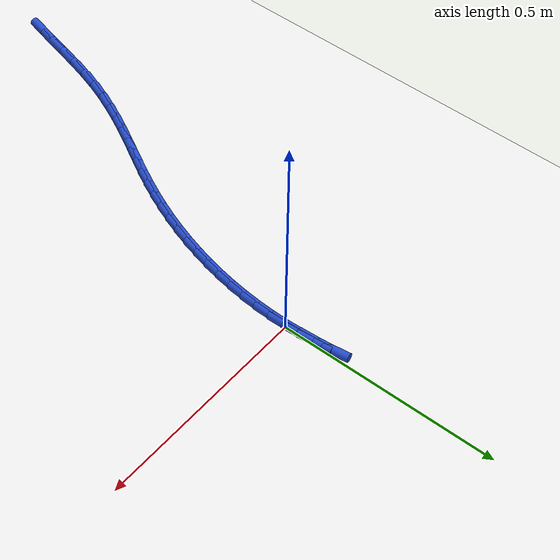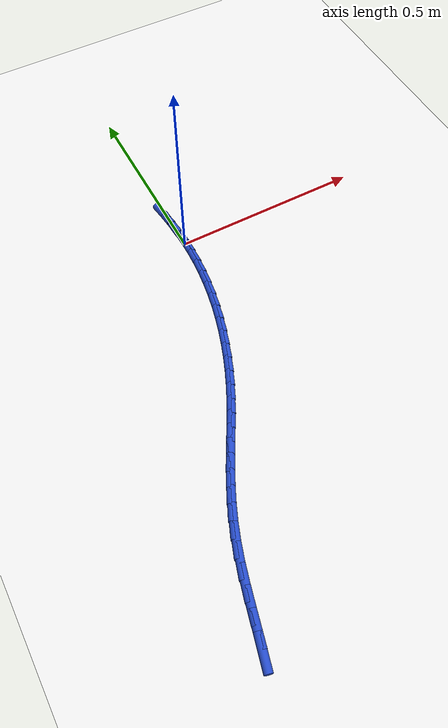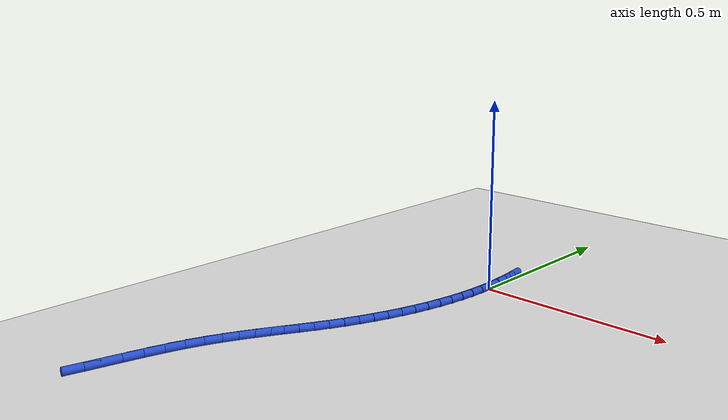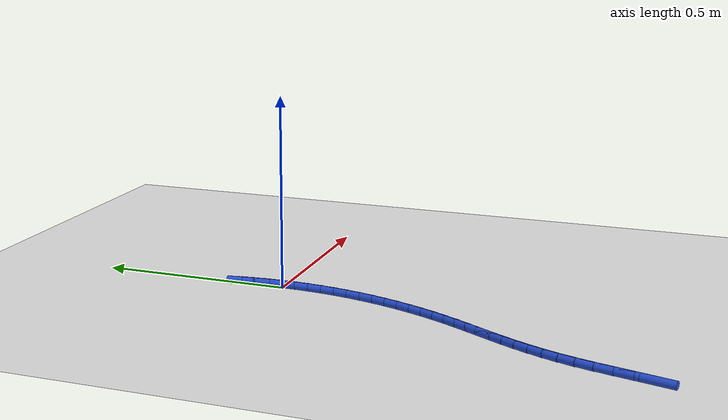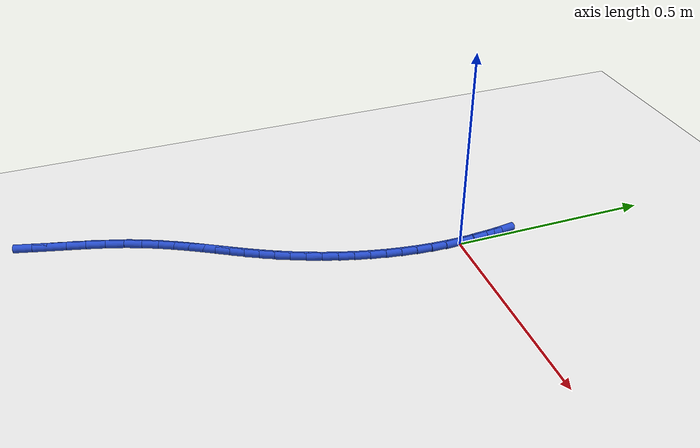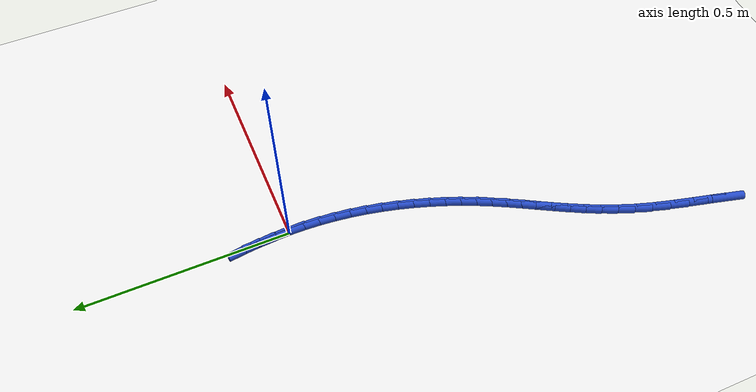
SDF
<sdf version="1.6">
 <world name="default">
  <model name="ground_plane">
   <static>1</static>
   <link name="link">
    <collision name="collision">
     <geometry><plane><normal>0 0 1</normal><size>100 100</size></plane></geometry>
     <surface><friction><ode><mu>100</mu><mu2>50</mu2></ode></friction></surface>
    </collision>
    <visual name="visual">
     <cast_shadows>0</cast_shadows>
     <geometry><plane><normal>0 0 1</normal><size>100 100</size></plane></geometry>
     <material>
      <script><uri>file://media/materials/scripts/gazebo.material</uri><name>Gazebo/WhiteGlow</name></script>
     </material>
    </visual>
   </link>
  </model>
  <model name="line">
   <link name="link_0">
    <pose>1.9949319973733282e-17 2.7755575615628914e-17 0.01 0 1.57 -1.537967544123048</pose>
    <collision name="collision">
     <geometry><cylinder><radius>0.01</radius><length>0.08</length></cylinder></geometry>
    </collision>
    <visual name="visual">
     <material>
      <script><name>Gazebo/Blue</name><uri>file://media/materials/scripts/gazebo.material</uri></script>
     </material>
     <geometry><cylinder><radius>0.01</radius><length>0.08</length></cylinder></geometry>
    </visual>
   </link>
   <link name="link_1">
    <pose>-0.0012037588185470295 0.03665461365363052 0.01 0 1.57 -1.499386344822641</pose>
    <collision name="collision">
     <geometry><cylinder><radius>0.01</radius><length>0.08</length></cylinder></geometry>
    </collision>
    <visual name="visual">
     <material>
      <script><name>Gazebo/Blue</name><uri>file://media/materials/scripts/gazebo.material</uri></script>
     </material>
     <geometry><cylinder><radius>0.01</radius><length>0.08</length></cylinder></geometry>
    </visual>
   </link>
   <link name="link_2">
    <pose>-0.0038199700766872713 0.07322881028822745 0.01 0 1.57 -1.4655532369670923</pose>
    <collision name="collision">
     <geometry><cylinder><radius>0.01</radius><length>0.08</length></cylinder></geometry>
    </collision>
    <visual name="visual">
     <material>
      <script><name>Gazebo/Blue</name><uri>file://media/materials/scripts/gazebo.material</uri></script>
     </material>
     <geometry><cylinder><radius>0.01</radius><length>0.08</length></cylinder></geometry>
    </visual>
   </link>
   <link name="link_3">
    <pose>-0.007688108798061293 0.10984733663296763 0.01 0 1.57 -1.4367887436755327</pose>
    <collision name="collision">
     <geometry><cylinder><radius>0.01</radius><length>0.08</length></cylinder></geometry>
    </collision>
    <visual name="visual">
     <material>
      <script><name>Gazebo/Blue</name><uri>file://media/materials/scripts/gazebo.material</uri></script>
     </material>
     <geometry><cylinder><radius>0.01</radius><length>0.08</length></cylinder></geometry>
    </visual>
   </link>
   <link name="link_243">
    <pose>-0.32262452233559424 -0.9791193335275507 0.01 0 1.57 1.3175782631200623</pose>
    <collision name="collision">
     <geometry><cylinder><radius>0.01</radius><length>0.08</length></cylinder></geometry>
    </collision>
    <visual name="visual">
     <material>
      <script><name>Gazebo/Blue</name><uri>file://media/materials/scripts/gazebo.material</uri></script>
     </material>
     <geometry><cylinder><radius>0.01</radius><length>0.08</length></cylinder></geometry>
    </visual>
   </link>
   <link name="link_244">
    <pose>-0.3113951539880688 -0.9357246040898904 0.01 0 1.57 1.3250016794053823</pose>
    <collision name="collision">
     <geometry><cylinder><radius>0.01</radius><length>0.08</length></cylinder></geometry>
    </collision>
    <visual name="visual">
     <material>
      <script><name>Gazebo/Blue</name><uri>file://media/materials/scripts/gazebo.material</uri></script>
     </material>
     <geometry><cylinder><radius>0.01</radius><length>0.08</length></cylinder></geometry>
    </visual>
   </link>
   <link name="link_245">
    <pose>-0.30021555740046973 -0.8911607936207857 0.01 0 1.57 1.3177851593825725</pose>
    <collision name="collision">
     <geometry><cylinder><radius>0.01</radius><length>0.08</length></cylinder></geometry>
    </collision>
    <visual name="visual">
     <material>
      <script><name>Gazebo/Blue</name><uri>file://media/materials/scripts/gazebo.material</uri></script>
     </material>
     <geometry><cylinder><radius>0.01</radius><length>0.08</length></cylinder></geometry>
    </visual>
   </link>
   <link name="link_246">
    <pose>-0.2886948882665122 -0.846602353147321 0.01 0 1.57 1.2955108911538684</pose>
    <collision name="collision">
     <geometry><cylinder><radius>0.01</radius><length>0.08</length></cylinder></geometry>
    </collision>
    <visual name="visual">
     <material>
      <script><name>Gazebo/Blue</name><uri>file://media/materials/scripts/gazebo.material</uri></script>
     </material>
     <geometry><cylinder><radius>0.01</radius><length>0.08</length></cylinder></geometry>
    </visual>
   </link>
   <link name="link_247">
    <pose>-0.276442302279911 -0.8032237336965817 0.01 0 1.57 1.2562616386047862</pose>
    <collision name="collision">
     <geometry><cylinder><radius>0.01</radius><length>0.08</length></cylinder></geometry>
    </collision>
    <visual name="visual">
     <material>
      <script><name>Gazebo/Blue</name><uri>file://media/materials/scripts/gazebo.material</uri></script>
     </material>
     <geometry><cylinder><radius>0.01</radius><length>0.08</length></cylinder></geometry>
    </visual>
   </link>
   <link name="link_248">
    <pose>-0.2630824331982659 -0.76215874799347 0.01 0 1.57 1.2088742928631073</pose>
    <collision name="collision">
     <geometry><cylinder><radius>0.01</radius><length>0.08</length></cylinder></geometry>
    </collision>
    <visual name="visual">
     <material>
      <script><name>Gazebo/Blue</name><uri>file://media/materials/scripts/gazebo.material</uri></script>
     </material>
     <geometry><cylinder><radius>0.01</radius><length>0.08</length></cylinder></geometry>
    </visual>
   </link>
   <link name="link_249">
    <pose>-0.24854109608151195 -0.7237504446938414 0.01 0 1.57 1.1649571751432402</pose>
    <collision name="collision">
     <geometry><cylinder><radius>0.01</radius><length>0.08</length></cylinder></geometry>
    </collision>
    <visual name="visual">
     <material>
      <script><name>Gazebo/Blue</name><uri>file://media/materials/scripts/gazebo.material</uri></script>
     </material>
     <geometry><cylinder><radius>0.01</radius><length>0.08</length></cylinder></geometry>
    </visual>
   </link>
   <link name="link_250">
    <pose>-0.23301765713453643 -0.6876236525149544 0.01 0 1.57 1.1266541553697247</pose>
    <collision name="collision">
     <geometry><cylinder><radius>0.01</radius><length>0.08</length></cylinder></geometry>
    </collision>
    <visual name="visual">
     <material>
      <script><name>Gazebo/Blue</name><uri>file://media/materials/scripts/gazebo.material</uri></script>
     </material>
     <geometry><cylinder><radius>0.01</radius><length>0.08</length></cylinder></geometry>
    </visual>
   </link>
   <link name="link_251">
    <pose>-0.21672141855028595 -0.6533771128230622 0.01 0 1.57 1.0955960039288322</pose>
    <collision name="collision">
     <geometry><cylinder><radius>0.01</radius><length>0.08</length></cylinder></geometry>
    </collision>
    <visual name="visual">
     <material>
      <script><name>Gazebo/Blue</name><uri>file://media/materials/scripts/gazebo.material</uri></script>
     </material>
     <geometry><cylinder><radius>0.01</radius><length>0.08</length></cylinder></geometry>
    </visual>
   </link>
   <link name="link_252">
    <pose>-0.1998616825217092 -0.6206095669844222 0.01 0 1.57 1.073188194151519</pose>
    <collision name="collision">
     <geometry><cylinder><radius>0.01</radius><length>0.08</length></cylinder></geometry>
    </collision>
    <visual name="visual">
     <material>
      <script><name>Gazebo/Blue</name><uri>file://media/materials/scripts/gazebo.material</uri></script>
     </material>
     <geometry><cylinder><radius>0.01</radius><length>0.08</length></cylinder></geometry>
    </visual>
   </link>
   <link name="link_253">
    <pose>-0.18264775124175267 -0.5889197563652869 0.01 0 1.57 1.0605201780426365</pose>
    <collision name="collision">
     <geometry><cylinder><radius>0.01</radius><length>0.08</length></cylinder></geometry>
    </collision>
    <visual name="visual">
     <material>
      <script><name>Gazebo/Blue</name><uri>file://media/materials/scripts/gazebo.material</uri></script>
     </material>
     <geometry><cylinder><radius>0.01</radius><length>0.08</length></cylinder></geometry>
    </visual>
   </link>
   <link name="link_254">
    <pose>-0.16528892690336505 -0.5579064223319138 0.01 0 1.57 1.0583024606955926</pose>
    <collision name="collision">
     <geometry><cylinder><radius>0.01</radius><length>0.08</length></cylinder></geometry>
    </collision>
    <visual name="visual">
     <material>
      <script><name>Gazebo/Blue</name><uri>file://media/materials/scripts/gazebo.material</uri></script>
     </material>
     <geometry><cylinder><radius>0.01</radius><length>0.08</length></cylinder></geometry>
    </visual>
   </link>
   <link name="link_255">
    <pose>-0.1479945116994929 -0.5271683062505562 0.01 0 1.57 1.0668240413284833</pose>
    <collision name="collision">
     <geometry><cylinder><radius>0.01</radius><length>0.08</length></cylinder></geometry>
    </collision>
    <visual name="visual">
     <material>
      <script><name>Gazebo/Blue</name><uri>file://media/materials/scripts/gazebo.material</uri></script>
     </material>
     <geometry><cylinder><radius>0.01</radius><length>0.08</length></cylinder></geometry>
    </visual>
   </link>
   <link name="link_256">
    <pose>-0.1309738078230848 -0.4963041494874706 0.01 0 1.57 1.0859225586982786</pose>
    <collision name="collision">
     <geometry><cylinder><radius>0.01</radius><length>0.08</length></cylinder></geometry>
    </collision>
    <visual name="visual">
     <material>
      <script><name>Gazebo/Blue</name><uri>file://media/materials/scripts/gazebo.material</uri></script>
     </material>
     <geometry><cylinder><radius>0.01</radius><length>0.08</length></cylinder></geometry>
    </visual>
   </link>
   <link name="link_257">
    <pose>-0.11443611746708787 -0.4649126934089114 0.01 0 1.57 1.1147752269035835</pose>
    <collision name="collision">
     <geometry><cylinder><radius>0.01</radius><length>0.08</length></cylinder></geometry>
    </collision>
    <visual name="visual">
     <material>
      <script><name>Gazebo/Blue</name><uri>file://media/materials/scripts/gazebo.material</uri></script>
     </material>
     <geometry><cylinder><radius>0.01</radius><length>0.08</length></cylinder></geometry>
    </visual>
   </link>
   <link name="link_258">
    <pose>-0.09858850622879102 -0.43260378877173633 0.01 0 1.57 1.1481474287069733</pose>
    <collision name="collision">
     <geometry><cylinder><radius>0.01</radius><length>0.08</length></cylinder></geometry>
    </collision>
    <visual name="visual">
     <material>
      <script><name>Gazebo/Blue</name><uri>file://media/materials/scripts/gazebo.material</uri></script>
     </material>
     <geometry><cylinder><radius>0.01</radius><length>0.08</length></cylinder></geometry>
    </visual>
   </link>
   <link name="link_259">
    <pose>-0.08358588327548248 -0.3992463524502164 0.01 0 1.57 1.1816460656162628</pose>
    <collision name="collision">
     <geometry><cylinder><radius>0.01</radius><length>0.08</length></cylinder></geometry>
    </collision>
    <visual name="visual">
     <material>
      <script><name>Gazebo/Blue</name><uri>file://media/materials/scripts/gazebo.material</uri></script>
     </material>
     <geometry><cylinder><radius>0.01</radius><length>0.08</length></cylinder></geometry>
    </visual>
   </link>
   <link name="link_260">
    <pose>-0.06953060115479257 -0.36497035521739873 0.01 0 1.57 1.2154565520476512</pose>
    <collision name="collision">
     <geometry><cylinder><radius>0.01</radius><length>0.08</length></cylinder></geometry>
    </collision>
    <visual name="visual">
     <material>
      <script><name>Gazebo/Blue</name><uri>file://media/materials/scripts/gazebo.material</uri></script>
     </material>
     <geometry><cylinder><radius>0.01</radius><length>0.08</length></cylinder></geometry>
    </visual>
   </link>
   <link name="link_261">
    <pose>-0.05652269577929842 -0.3299172748004935 0.01 0 1.57 1.2499472337731319</pose>
    <collision name="collision">
     <geometry><cylinder><radius>0.01</radius><length>0.08</length></cylinder></geometry>
    </collision>
    <visual name="visual">
     <material>
      <script><name>Gazebo/Blue</name><uri>file://media/materials/scripts/gazebo.material</uri></script>
     </material>
     <geometry><cylinder><radius>0.01</radius><length>0.08</length></cylinder></geometry>
    </visual>
   </link>
   <link name="link_262">
    <pose>-0.04466220306157557 -0.29422858892670667 0.01 0 1.57 1.2854816963293347</pose>
    <collision name="collision">
     <geometry><cylinder><radius>0.01</radius><length>0.08</length></cylinder></geometry>
    </collision>
    <visual name="visual">
     <material>
      <script><name>Gazebo/Blue</name><uri>file://media/materials/scripts/gazebo.material</uri></script>
     </material>
     <geometry><cylinder><radius>0.01</radius><length>0.08</length></cylinder></geometry>
    </visual>
   </link>
   <link name="link_263">
    <pose>-0.03404915891420102 -0.25804577532324874 0.01 0 1.57 1.3224241932133247</pose>
    <collision name="collision">
     <geometry><cylinder><radius>0.01</radius><length>0.08</length></cylinder></geometry>
    </collision>
    <visual name="visual">
     <material>
      <script><name>Gazebo/Blue</name><uri>file://media/materials/scripts/gazebo.material</uri></script>
     </material>
     <geometry><cylinder><radius>0.01</radius><length>0.08</length></cylinder></geometry>
    </visual>
   </link>
   <link name="link_264">
    <pose>-0.02478340484546528 -0.221510134604626 0.01 0 1.57 1.3606539011661456</pose>
    <collision name="collision">
     <geometry><cylinder><radius>0.01</radius><length>0.08</length></cylinder></geometry>
    </collision>
    <visual name="visual">
     <material>
      <script><name>Gazebo/Blue</name><uri>file://media/materials/scripts/gazebo.material</uri></script>
     </material>
     <geometry><cylinder><radius>0.01</radius><length>0.08</length></cylinder></geometry>
    </visual>
   </link>
   <link name="link_265">
    <pose>-0.01694091404015618 -0.18474122206630095 0.01 0 1.57 1.399445434981872</pose>
    <collision name="collision">
     <geometry><cylinder><radius>0.01</radius><length>0.08</length></cylinder></geometry>
    </collision>
    <visual name="visual">
     <material>
      <script><name>Gazebo/Blue</name><uri>file://media/materials/scripts/gazebo.material</uri></script>
     </material>
     <geometry><cylinder><radius>0.01</radius><length>0.08</length></cylinder></geometry>
    </visual>
   </link>
   <link name="link_266">
    <pose>-0.010551116900535904 -0.14781619004001878 0.01 0 1.57 1.4388149040929044</pose>
    <collision name="collision">
     <geometry><cylinder><radius>0.01</radius><length>0.08</length></cylinder></geometry>
    </collision>
    <visual name="visual">
     <material>
      <script><name>Gazebo/Blue</name><uri>file://media/materials/scripts/gazebo.material</uri></script>
     </material>
     <geometry><cylinder><radius>0.01</radius><length>0.08</length></cylinder></geometry>
    </visual>
   </link>
   <link name="link_267">
    <pose>-0.005638070176657554 -0.11080729517301509 0.01 0 1.57 1.4788844022248488</pose>
    <collision name="collision">
     <geometry><cylinder><radius>0.01</radius><length>0.08</length></cylinder></geometry>
    </collision>
    <visual name="visual">
     <material>
      <script><name>Gazebo/Blue</name><uri>file://media/materials/scripts/gazebo.material</uri></script>
     </material>
     <geometry><cylinder><radius>0.01</radius><length>0.08</length></cylinder></geometry>
    </visual>
   </link>
   <link name="link_268">
    <pose>-0.002225830618573637 -0.07378679411252206 0.01 0 1.57 1.5197750805334171</pose>
    <collision name="collision">
     <geometry><cylinder><radius>0.01</radius><length>0.08</length></cylinder></geometry>
    </collision>
    <visual name="visual">
     <material>
      <script><name>Gazebo/Blue</name><uri>file://media/materials/scripts/gazebo.material</uri></script>
     </material>
     <geometry><cylinder><radius>0.01</radius><length>0.08</length></cylinder></geometry>
    </visual>
   </link>
   <link name="link_269">
    <pose>-0.000338454976336831 -0.0368269435057718 0.01 0 1.57 1.5616061682984217</pose>
    <collision name="collision">
     <geometry><cylinder><radius>0.01</radius><length>0.08</length></cylinder></geometry>
    </collision>
    <visual name="visual">
     <material>
      <script><name>Gazebo/Blue</name><uri>file://media/materials/scripts/gazebo.material</uri></script>
     </material>
     <geometry><cylinder><radius>0.01</radius><length>0.08</length></cylinder></geometry>
    </visual>
   </link>
   <link name="link_270">
    <pose>3.382710778154774e-17 2.220446049250313e-16 0.01 0 1.57 -1.5370990258353163</pose>
    <collision name="collision">
     <geometry><cylinder><radius>0.01</radius><length>0.08</length></cylinder></geometry>
    </collision>
    <visual name="visual">
     <material>
      <script><name>Gazebo/Blue</name><uri>file://media/materials/scripts/gazebo.material</uri></script>
     </material>
     <geometry><cylinder><radius>0.01</radius><length>0.08</length></cylinder></geometry>
    </visual>
   </link>
   <link name="link_271">
    <pose>-0.001234522439615744 0.03662177975756298 0.01 0 1.57 -1.4930442792096699</pose>
    <collision name="collision">
     <geometry><cylinder><radius>0.01</radius><length>0.08</length></cylinder></geometry>
    </collision>
    <visual name="visual">
     <material>
      <script><name>Gazebo/Blue</name><uri>file://media/materials/scripts/gazebo.material</uri></script>
     </material>
     <geometry><cylinder><radius>0.01</radius><length>0.08</length></cylinder></geometry>
    </visual>
   </link>
   <link name="link_272">
    <pose>-0.004066079045236908 0.07296613911968207 0.01 0 1.57 -1.515128340675736</pose>
    <collision name="collision">
     <geometry><cylinder><radius>0.01</radius><length>0.08</length></cylinder></geometry>
    </collision>
    <visual name="visual">
     <material>
      <script><name>Gazebo/Blue</name><uri>file://media/materials/scripts/gazebo.material</uri></script>
     </material>
     <geometry><cylinder><radius>0.01</radius><length>0.08</length></cylinder></geometry>
    </visual>
   </link>
  </model>
 </world>
</sdf>
